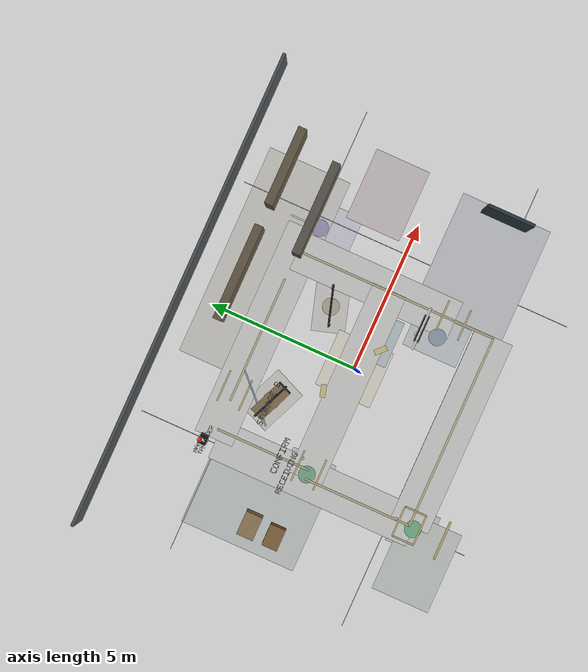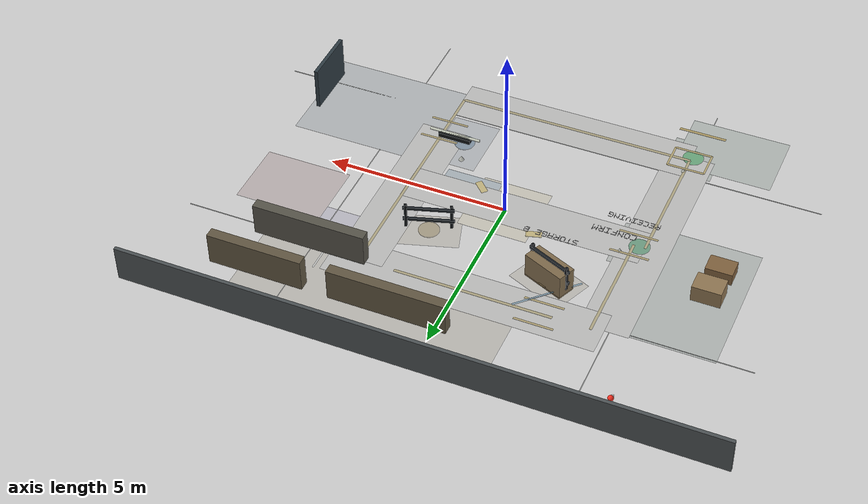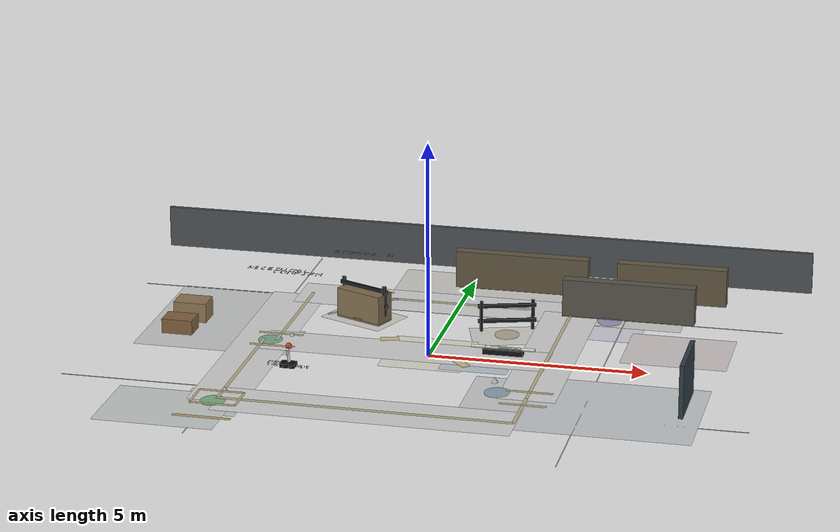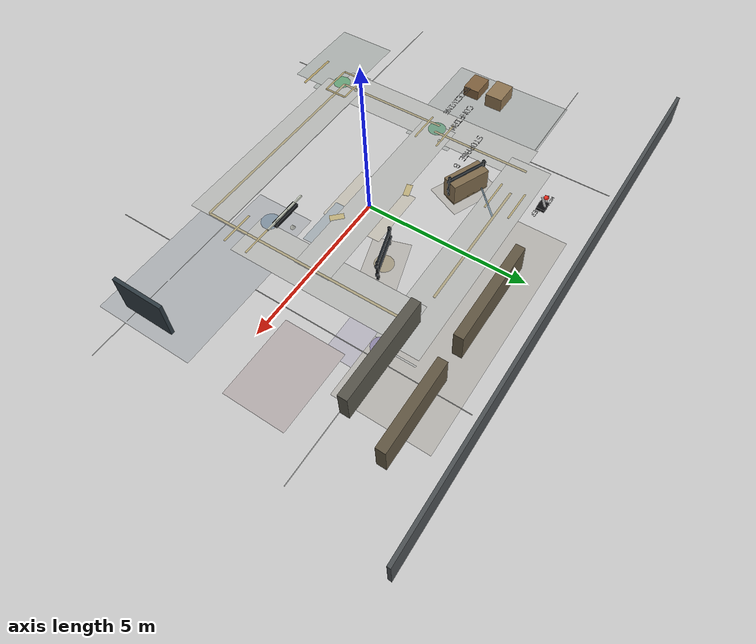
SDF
<sdf version="1.9">
 <world name="factory_patrol">
  <model name="north_wall">
   <static>true</static>
   <pose>0 6 0.5 0 0 0</pose>
   <link name="link">
    <collision name="c"><geometry><box><size>16 0.1 1</size></box></geometry></collision>
    <visual name="v">
     <geometry><box><size>16 0.1 1</size></box></geometry>
     <material><diffuse>0.30 0.32 0.33 1</diffuse></material>
    </visual>
   </link>
  </model>
  <model name="showcase_large_factory_layout">
   <static>true</static>
   <pose>0 0 0.052 0 0 0</pose>
   <link name="link">
    <visual name="receiving_area_large">
     <pose>-5.35 1.10 0 0 0 0</pose>
     <geometry><box><size>2.70 3.90 0.012</size></box></geometry>
     <material><diffuse>0.25 0.34 0.30 0.16</diffuse><ambient>0.25 0.34 0.30 0.16</ambient></material>
    </visual>
    <visual name="storage_area_large">
     <pose>1.80 3.95 0.002 0 0 0</pose>
     <geometry><box><size>7.10 2.80 0.012</size></box></geometry>
     <material><diffuse>0.45 0.40 0.30 0.15</diffuse><ambient>0.45 0.40 0.30 0.15</ambient></material>
    </visual>
    <visual name="packing_area_large">
     <pose>4.65 -2.40 0.004 0 0 0</pose>
     <geometry><box><size>3.80 3.05 0.012</size></box></geometry>
     <material><diffuse>0.27 0.33 0.39 0.16</diffuse><ambient>0.27 0.33 0.39 0.16</ambient></material>
    </visual>
    <visual name="dock_area_large">
     <pose>-4.80 -4.35 0.006 0 0 0</pose>
     <geometry><box><size>2.70 1.95 0.012</size></box></geometry>
     <material><diffuse>0.25 0.36 0.30 0.18</diffuse><ambient>0.25 0.36 0.30 0.18</ambient></material>
    </visual>
    <visual name="restricted_service_area_large">
     <pose>5.50 1.30 0.008 0 0 0</pose>
     <geometry><box><size>2.40 1.85 0.012</size></box></geometry>
     <material><diffuse>0.42 0.25 0.25 0.13</diffuse><ambient>0.42 0.25 0.25 0.13</ambient></material>
    </visual>
    <visual name="aisle_left_band">
     <pose>-3.85 -0.35 0.010 0 0 1.5708</pose>
     <geometry><box><size>6.90 1.30 0.010</size></box></geometry>
     <material><diffuse>0.50 0.51 0.48 0.13</diffuse><ambient>0.50 0.51 0.48 0.13</ambient></material>
    </visual>
    <visual name="aisle_back_band">
     <pose>-0.20 3.20 0.012 0 0 0</pose>
     <geometry><box><size>7.35 1.30 0.010</size></box></geometry>
     <material><diffuse>0.50 0.51 0.48 0.13</diffuse><ambient>0.50 0.51 0.48 0.13</ambient></material>
    </visual>
    <visual name="aisle_right_drop_band">
     <pose>2.70 0.45 0.014 0 0 1.5708</pose>
     <geometry><box><size>5.50 1.30 0.010</size></box></geometry>
     <material><diffuse>0.50 0.51 0.48 0.13</diffuse><ambient>0.50 0.51 0.48 0.13</ambient></material>
    </visual>
    <visual name="aisle_return_band">
     <pose>-0.55 -3.65 0.016 0 0 0</pose>
     <geometry><box><size>6.60 1.30 0.010</size></box></geometry>
     <material><diffuse>0.50 0.51 0.48 0.13</diffuse><ambient>0.50 0.51 0.48 0.13</ambient></material>
    </visual>
    <visual name="aisle_center_cross_band">
     <pose>-0.55 0.00 0.018 0 0 0</pose>
     <geometry><box><size>6.60 1.15 0.010</size></box></geometry>
     <material><diffuse>0.50 0.51 0.48 0.10</diffuse><ambient>0.50 0.51 0.48 0.10</ambient></material>
    </visual>
    <visual name="route_dock_to_receiving">
     <pose>-3.85 -1.82 0.026 0 0 1.5708</pose>
     <geometry><box><size>3.66 0.070 0.018</size></box></geometry>
     <material><diffuse>0.66 0.60 0.38 0.62</diffuse><emissive>0.06 0.04 0.00 1</emissive></material>
    </visual>
    <visual name="route_receiving_to_back">
     <pose>-3.55 1.60 0.028 0 0 1.5708</pose>
     <geometry><box><size>3.20 0.070 0.018</size></box></geometry>
     <material><diffuse>0.66 0.60 0.38 0.62</diffuse><emissive>0.06 0.04 0.00 1</emissive></material>
    </visual>
    <visual name="route_back_storage">
     <pose>-0.42 3.20 0.030 0 0 0</pose>
     <geometry><box><size>4.26 0.070 0.018</size></box></geometry>
     <material><diffuse>0.66 0.60 0.38 0.62</diffuse><emissive>0.06 0.04 0.00 1</emissive></material>
    </visual>
    <visual name="route_storage_to_packing">
     <pose>2.70 0.48 0.032 0 0 1.5708</pose>
     <geometry><box><size>5.44 0.070 0.018</size></box></geometry>
     <material><diffuse>0.66 0.60 0.38 0.62</diffuse><emissive>0.06 0.04 0.00 1</emissive></material>
    </visual>
    <visual name="route_packing_to_return">
     <pose>2.70 -2.95 0.034 0 0 1.5708</pose>
     <geometry><box><size>1.40 0.070 0.018</size></box></geometry>
     <material><diffuse>0.66 0.60 0.38 0.62</diffuse><emissive>0.06 0.04 0.00 1</emissive></material>
    </visual>
    <visual name="route_return_to_dock">
     <pose>-0.58 -3.65 0.036 0 0 0</pose>
     <geometry><box><size>6.55 0.070 0.018</size></box></geometry>
     <material><diffuse>0.66 0.60 0.38 0.62</diffuse><emissive>0.06 0.04 0.00 1</emissive></material>
    </visual>
    <visual name="station_frame_dock_n">
     <pose>-3.85 -3.28 0.040 0 0 0</pose>
     <geometry><box><size>1.02 0.050 0.018</size></box></geometry>
     <material><diffuse>0.73 0.65 0.40 0.76</diffuse></material>
    </visual>
    <visual name="station_frame_dock_s">
     <pose>-3.85 -4.02 0.040 0 0 0</pose>
     <geometry><box><size>1.02 0.050 0.018</size></box></geometry>
     <material><diffuse>0.73 0.65 0.40 0.76</diffuse></material>
    </visual>
    <visual name="station_frame_dock_e">
     <pose>-3.34 -3.65 0.040 0 0 1.5708</pose>
     <geometry><box><size>0.74 0.050 0.018</size></box></geometry>
     <material><diffuse>0.73 0.65 0.40 0.76</diffuse></material>
    </visual>
    <visual name="station_frame_dock_w">
     <pose>-4.36 -3.65 0.040 0 0 1.5708</pose>
     <geometry><box><size>0.74 0.050 0.018</size></box></geometry>
     <material><diffuse>0.73 0.65 0.40 0.76</diffuse></material>
    </visual>
    <visual name="station_frame_receiving_n">
     <pose>-3.55 0.38 0.040 0 0 0</pose>
     <geometry><box><size>1.05 0.050 0.018</size></box></geometry>
     <material><diffuse>0.73 0.65 0.40 0.72</diffuse></material>
    </visual>
    <visual name="station_frame_receiving_s">
     <pose>-3.55 -0.38 0.040 0 0 0</pose>
     <geometry><box><size>1.05 0.050 0.018</size></box></geometry>
     <material><diffuse>0.73 0.65 0.40 0.72</diffuse></material>
    </visual>
    <visual name="station_frame_storage_n">
     <pose>-2.20 3.58 0.040 0 0 0</pose>
     <geometry><box><size>1.05 0.050 0.018</size></box></geometry>
     <material><diffuse>0.73 0.65 0.40 0.72</diffuse></material>
    </visual>
    <visual name="station_frame_storage_s">
     <pose>-2.20 2.82 0.040 0 0 0</pose>
     <geometry><box><size>1.05 0.050 0.018</size></box></geometry>
     <material><diffuse>0.73 0.65 0.40 0.72</diffuse></material>
    </visual>
    <visual name="station_frame_packing_n">
     <pose>2.70 -1.87 0.040 0 0 0</pose>
     <geometry><box><size>1.05 0.050 0.018</size></box></geometry>
     <material><diffuse>0.73 0.65 0.40 0.72</diffuse></material>
    </visual>
    <visual name="station_frame_packing_s">
     <pose>2.70 -2.63 0.040 0 0 0</pose>
     <geometry><box><size>1.05 0.050 0.018</size></box></geometry>
     <material><diffuse>0.73 0.65 0.40 0.72</diffuse></material>
    </visual>
    <visual name="slow_zone_large_hatch_1">
     <pose>-2.45 2.20 0.048 0 0 0.7854</pose>
     <geometry><box><size>1.05 0.045 0.018</size></box></geometry>
     <material><diffuse>0.24 0.44 0.56 0.48</diffuse></material>
    </visual>
    <visual name="slow_zone_large_hatch_2">
     <pose>-2.15 2.50 0.048 0 0 0.7854</pose>
     <geometry><box><size>1.05 0.045 0.018</size></box></geometry>
     <material><diffuse>0.24 0.44 0.56 0.48</diffuse></material>
    </visual>
    <visual name="slow_zone_large_hatch_3">
     <pose>-1.85 2.80 0.048 0 0 0.7854</pose>
     <geometry><box><size>1.05 0.045 0.018</size></box></geometry>
     <material><diffuse>0.24 0.44 0.56 0.48</diffuse></material>
    </visual>
    <visual name="storage_showcase_rack_a">
     <pose>1.25 4.55 0.45 0 0 0</pose>
     <geometry><box><size>3.20 0.28 0.90</size></box></geometry>
     <material><diffuse>0.38 0.34 0.26 1</diffuse></material>
    </visual>
    <visual name="storage_showcase_rack_b">
     <pose>4.85 4.55 0.45 0 0 0</pose>
     <geometry><box><size>2.60 0.28 0.90</size></box></geometry>
     <material><diffuse>0.38 0.34 0.26 1</diffuse></material>
    </visual>
    <visual name="storage_showcase_rack_c">
     <pose>4.05 3.15 0.45 0 0 0</pose>
     <geometry><box><size>3.10 0.28 0.90</size></box></geometry>
     <material><diffuse>0.34 0.33 0.29 1</diffuse></material>
    </visual>
    <visual name="receiving_inbound_buffer_1">
     <pose>-5.90 0.15 0.18 0 0 0</pose>
     <geometry><box><size>0.72 0.52 0.34</size></box></geometry>
     <material><diffuse>0.50 0.38 0.24 1</diffuse></material>
    </visual>
    <visual name="receiving_inbound_buffer_2">
     <pose>-5.85 1.00 0.24 0 0 0</pose>
     <geometry><box><size>0.78 0.56 0.46</size></box></geometry>
     <material><diffuse>0.56 0.46 0.32 1</diffuse></material>
    </visual>
    <visual name="packing_showcase_toolwall">
     <pose>6.20 -2.38 0.85 0 0 0</pose>
     <geometry><box><size>0.10 1.55 1.20</size></box></geometry>
     <material><diffuse>0.18 0.23 0.26 1</diffuse></material>
    </visual>
    <visual name="dock_approach_stop_bar">
     <pose>-3.85 -4.80 0.052 0 0 0</pose>
     <geometry><box><size>1.30 0.070 0.018</size></box></geometry>
     <material><diffuse>0.72 0.62 0.34 0.78</diffuse></material>
    </visual>
   </link>
  </model>
  <model name="storage_rack_2">
   <static>true</static>
   <pose>-2 2 0.35 0 0 -0.4</pose>
   <link name="link">
    <collision name="c"><geometry><box><size>1.2 0.5 0.7</size></box></geometry></collision>
    <visual name="v">
     <geometry><box><size>1.2 0.5 0.7</size></box></geometry>
     <material><diffuse>0.50 0.42 0.30 1</diffuse></material>
    </visual>
   </link>
  </model>
  <model name="showcase_rack_and_workcell_detail">
   <static>true</static>
   <link name="link">
    <visual name="rack_a_top_beam">
     <pose>1.50 1.50 0.78 0 0 0.30</pose>
     <geometry><box><size>1.34 0.06 0.08</size></box></geometry>
     <material><diffuse>0.10 0.12 0.14 1</diffuse></material>
    </visual>
    <visual name="rack_a_bottom_beam">
     <pose>1.50 1.50 0.42 0 0 0.30</pose>
     <geometry><box><size>1.34 0.06 0.08</size></box></geometry>
     <material><diffuse>0.10 0.12 0.14 1</diffuse></material>
    </visual>
    <visual name="rack_a_post_1">
     <pose>0.94 1.31 0.55 0 0 0.30</pose>
     <geometry><box><size>0.07 0.07 0.72</size></box></geometry>
     <material><diffuse>0.08 0.09 0.10 1</diffuse></material>
    </visual>
    <visual name="rack_a_post_2">
     <pose>2.06 1.69 0.55 0 0 0.30</pose>
     <geometry><box><size>0.07 0.07 0.72</size></box></geometry>
     <material><diffuse>0.08 0.09 0.10 1</diffuse></material>
    </visual>
    <visual name="rack_b_top_beam">
     <pose>-2.00 2.00 0.78 0 0 -0.40</pose>
     <geometry><box><size>1.34 0.06 0.08</size></box></geometry>
     <material><diffuse>0.10 0.12 0.14 1</diffuse></material>
    </visual>
    <visual name="rack_b_bottom_beam">
     <pose>-2.00 2.00 0.42 0 0 -0.40</pose>
     <geometry><box><size>1.34 0.06 0.08</size></box></geometry>
     <material><diffuse>0.10 0.12 0.14 1</diffuse></material>
    </visual>
    <visual name="rack_b_post_1">
     <pose>-2.54 2.24 0.55 0 0 -0.40</pose>
     <geometry><box><size>0.07 0.07 0.72</size></box></geometry>
     <material><diffuse>0.08 0.09 0.10 1</diffuse></material>
    </visual>
    <visual name="rack_b_post_2">
     <pose>-1.46 1.76 0.55 0 0 -0.40</pose>
     <geometry><box><size>0.07 0.07 0.72</size></box></geometry>
     <material><diffuse>0.08 0.09 0.10 1</diffuse></material>
    </visual>
    <visual name="packing_conveyor">
     <pose>2.00 -1.36 0.78 0 0 0</pose>
     <geometry><box><size>0.90 0.16 0.12</size></box></geometry>
     <material><diffuse>0.07 0.08 0.09 1</diffuse></material>
    </visual>
    <visual name="packing_roller_1">
     <pose>1.70 -1.36 0.87 0 1.5708 0</pose>
     <geometry><cylinder><radius>0.035</radius><length>0.82</length></cylinder></geometry>
     <material><diffuse>0.80 0.82 0.76 1</diffuse></material>
    </visual>
    <visual name="packing_roller_2">
     <pose>2.00 -1.36 0.87 0 1.5708 0</pose>
     <geometry><cylinder><radius>0.035</radius><length>0.82</length></cylinder></geometry>
     <material><diffuse>0.80 0.82 0.76 1</diffuse></material>
    </visual>
    <visual name="packing_roller_3">
     <pose>2.30 -1.36 0.87 0 1.5708 0</pose>
     <geometry><cylinder><radius>0.035</radius><length>0.82</length></cylinder></geometry>
     <material><diffuse>0.80 0.82 0.76 1</diffuse></material>
    </visual>
   </link>
  </model>
  <model name="showcase_zone_floor">
   <static>true</static>
   <pose>0 0 0.035 0 0 0</pose>
   <link name="link">
    <visual name="receiving_zone">
     <pose>-3.70 0.00 0 0 0 0</pose>
     <geometry><box><size>1.25 1.50 0.012</size></box></geometry>
     <material><diffuse>0.28 0.36 0.32 0.20</diffuse><ambient>0.28 0.36 0.32 0.20</ambient></material>
    </visual>
    <visual name="storage_a_zone">
     <pose>1.50 1.50 0 0 0 0.30</pose>
     <geometry><box><size>1.65 1.10 0.012</size></box></geometry>
     <material><diffuse>0.48 0.43 0.32 0.20</diffuse><ambient>0.48 0.43 0.32 0.20</ambient></material>
    </visual>
    <visual name="storage_b_zone">
     <pose>-2.00 2.00 0 0 0 -0.40</pose>
     <geometry><box><size>1.65 1.15 0.012</size></box></geometry>
     <material><diffuse>0.48 0.43 0.32 0.20</diffuse><ambient>0.48 0.43 0.32 0.20</ambient></material>
    </visual>
    <visual name="packing_zone">
     <pose>2.00 -2.00 0 0 0 0</pose>
     <geometry><box><size>1.30 1.85 0.012</size></box></geometry>
     <material><diffuse>0.30 0.36 0.42 0.20</diffuse><ambient>0.30 0.36 0.42 0.20</ambient></material>
    </visual>
    <visual name="dock_zone">
     <pose>-3.90 -3.80 0 0 0 0</pose>
     <geometry><box><size>1.35 1.35 0.012</size></box></geometry>
     <material><diffuse>0.28 0.38 0.32 0.22</diffuse><ambient>0.28 0.38 0.32 0.22</ambient></material>
    </visual>
    <visual name="elevator_zone">
     <pose>3.65 2.85 0 0 0 0</pose>
     <geometry><box><size>1.70 2.30 0.012</size></box></geometry>
     <material><diffuse>0.46 0.42 0.62 0.15</diffuse><ambient>0.46 0.42 0.62 0.15</ambient></material>
    </visual>
    <visual name="traffic_control_zone">
     <pose>0.00 0.00 0.006 0 0 0</pose>
     <geometry><box><size>1.90 1.90 0.012</size></box></geometry>
     <material><diffuse>0.72 0.64 0.40 0.14</diffuse><ambient>0.72 0.64 0.40 0.14</ambient></material>
    </visual>
    <visual name="slow_zone_overlay">
     <pose>1.20 -0.25 0.012 0 0 0</pose>
     <geometry><box><size>1.55 1.25 0.012</size></box></geometry>
     <material><diffuse>0.22 0.38 0.48 0.24</diffuse><ambient>0.22 0.38 0.48 0.24</ambient></material>
    </visual>
   </link>
  </model>
  <model name="showcase_floor_finish">
   <static>true</static>
   <pose>0 0 0.057 0 0 0</pose>
   <link name="link">
    <visual name="floor_joint_x_neg">
     <pose>-4.00 0 0 0 0 0</pose>
     <geometry><box><size>0.018 11.30 0.010</size></box></geometry>
     <material><diffuse>0.28 0.29 0.28 0.42</diffuse><ambient>0.28 0.29 0.28 0.42</ambient></material>
    </visual>
    <visual name="floor_joint_x_pos">
     <pose>4.00 0 0 0 0 0</pose>
     <geometry><box><size>0.018 11.30 0.010</size></box></geometry>
     <material><diffuse>0.28 0.29 0.28 0.42</diffuse><ambient>0.28 0.29 0.28 0.42</ambient></material>
    </visual>
    <visual name="floor_joint_y_neg">
     <pose>0 -3.00 0 0 0 0</pose>
     <geometry><box><size>15.30 0.018 0.010</size></box></geometry>
     <material><diffuse>0.28 0.29 0.28 0.42</diffuse><ambient>0.28 0.29 0.28 0.42</ambient></material>
    </visual>
    <visual name="floor_joint_y_pos">
     <pose>0 3.00 0 0 0 0</pose>
     <geometry><box><size>15.30 0.018 0.010</size></box></geometry>
     <material><diffuse>0.28 0.29 0.28 0.42</diffuse><ambient>0.28 0.29 0.28 0.42</ambient></material>
    </visual>
    <visual name="floor_tire_scuff_main_1">
     <pose>-0.55 -0.18 0.004 0 0 -0.01</pose>
     <geometry><box><size>6.80 0.035 0.010</size></box></geometry>
     <material><diffuse>0.22 0.23 0.22 0.26</diffuse><ambient>0.22 0.23 0.22 0.26</ambient></material>
    </visual>
    <visual name="floor_tire_scuff_main_2">
     <pose>-0.42 0.20 0.004 0 0 -0.01</pose>
     <geometry><box><size>6.40 0.028 0.010</size></box></geometry>
     <material><diffuse>0.22 0.23 0.22 0.22</diffuse><ambient>0.22 0.23 0.22 0.22</ambient></material>
    </visual>
    <visual name="floor_tire_scuff_dock_1">
     <pose>-3.88 -2.10 0.004 0 0 1.5708</pose>
     <geometry><box><size>3.20 0.030 0.010</size></box></geometry>
     <material><diffuse>0.22 0.23 0.22 0.24</diffuse><ambient>0.22 0.23 0.22 0.24</ambient></material>
    </visual>
    <visual name="floor_tire_scuff_packing_1">
     <pose>2.70 -1.60 0.004 0 0 -1.5708</pose>
     <geometry><box><size>3.20 0.025 0.010</size></box></geometry>
     <material><diffuse>0.22 0.23 0.22 0.22</diffuse><ambient>0.22 0.23 0.22 0.22</ambient></material>
    </visual>
   </link>
  </model>
  <model name="showcase_lane_markers">
   <static>true</static>
   <pose>0 0 0.055 0 0 0</pose>
   <link name="link">
    <visual name="lane_dock_receiving">
     <pose>-3.90 -1.84 0 0 0 1.5708</pose>
     <geometry><box><size>3.62 0.045 0.018</size></box></geometry>
     <material><diffuse>0.60 0.62 0.58 0.20</diffuse><emissive>0.03 0.03 0.03 1</emissive></material>
    </visual>
    <visual name="lane_receiving_storage_a">
     <pose>-3.55 1.60 0 0 0 1.5708</pose>
     <geometry><box><size>3.20 0.045 0.018</size></box></geometry>
     <material><diffuse>0.60 0.62 0.58 0.18</diffuse><emissive>0.03 0.03 0.03 1</emissive></material>
    </visual>
    <visual name="lane_receiving_storage_b">
     <pose>-2.85 3.20 0 0 0 0</pose>
     <geometry><box><size>1.40 0.045 0.018</size></box></geometry>
     <material><diffuse>0.60 0.62 0.58 0.18</diffuse><emissive>0.03 0.03 0.03 1</emissive></material>
    </visual>
    <visual name="lane_storage_a_packing">
     <pose>0.25 3.20 0 0 0 0</pose>
     <geometry><box><size>4.90 0.045 0.018</size></box></geometry>
     <material><diffuse>0.60 0.62 0.58 0.18</diffuse><emissive>0.03 0.03 0.03 1</emissive></material>
    </visual>
    <visual name="lane_storage_b_packing">
     <pose>2.70 0.48 0.004 0 0 1.5708</pose>
     <geometry><box><size>5.44 0.045 0.018</size></box></geometry>
     <material><diffuse>0.60 0.62 0.58 0.18</diffuse><emissive>0.03 0.03 0.03 1</emissive></material>
    </visual>
    <visual name="lane_packing_dock">
     <pose>-0.58 -3.65 0 0 0 0</pose>
     <geometry><box><size>6.55 0.045 0.018</size></box></geometry>
     <material><diffuse>0.60 0.62 0.58 0.18</diffuse><emissive>0.03 0.03 0.03 1</emissive></material>
    </visual>
    <visual name="lane_packing_lift">
     <pose>2.70 -2.95 0 0 0 1.5708</pose>
     <geometry><box><size>1.40 0.045 0.018</size></box></geometry>
     <material><diffuse>0.60 0.62 0.58 0.18</diffuse><emissive>0.03 0.03 0.03 1</emissive></material>
    </visual>
    <visual name="lane_lift_floor2">
     <pose>3.65 3.35 0 0 0 1.5708</pose>
     <geometry><box><size>1.05 0.045 0.018</size></box></geometry>
     <material><diffuse>0.60 0.62 0.58 0.16</diffuse><emissive>0.02 0.02 0.02 1</emissive></material>
    </visual>
    <visual name="arrow_receiving">
     <pose>-3.28 0.34 0.020 0 0 0.78</pose>
     <geometry><cone><radius>0.11</radius><length>0.18</length></cone></geometry>
     <material><diffuse>0.64 0.66 0.60 0.55</diffuse><emissive>0.08 0.08 0.06 1</emissive></material>
    </visual>
    <visual name="arrow_packing">
     <pose>1.82 -1.36 0.020 0 0 -1.2</pose>
     <geometry><cone><radius>0.11</radius><length>0.18</length></cone></geometry>
     <material><diffuse>0.64 0.66 0.60 0.55</diffuse><emissive>0.08 0.08 0.06 1</emissive></material>
    </visual>
    <visual name="arrow_dock">
     <pose>-3.82 -3.18 0.020 0 0 -1.57</pose>
     <geometry><cone><radius>0.11</radius><length>0.18</length></cone></geometry>
     <material><diffuse>0.64 0.66 0.60 0.55</diffuse><emissive>0.08 0.08 0.06 1</emissive></material>
    </visual>
   </link>
  </model>
  <model name="showcase_station_pads">
   <static>true</static>
   <pose>0 0 0.070 0 0 0</pose>
   <link name="link">
    <visual name="pad_receiving">
     <pose>-3.70 0.00 0 0 0 0</pose>
     <geometry><cylinder><radius>0.28</radius><length>0.026</length></cylinder></geometry>
     <material><diffuse>0.20 0.52 0.34 0.58</diffuse><emissive>0.00 0.07 0.03 1</emissive></material>
    </visual>
    <visual name="pad_storage_a">
     <pose>1.50 1.50 0 0 0 0</pose>
     <geometry><cylinder><radius>0.28</radius><length>0.026</length></cylinder></geometry>
     <material><diffuse>0.54 0.46 0.28 0.50</diffuse><emissive>0.06 0.03 0.00 1</emissive></material>
    </visual>
    <visual name="pad_storage_b">
     <pose>-2.00 2.00 0 0 0 0</pose>
     <geometry><cylinder><radius>0.28</radius><length>0.026</length></cylinder></geometry>
     <material><diffuse>0.54 0.46 0.28 0.50</diffuse><emissive>0.06 0.03 0.00 1</emissive></material>
    </visual>
    <visual name="pad_packing">
     <pose>2.00 -2.00 0 0 0 0</pose>
     <geometry><cylinder><radius>0.28</radius><length>0.026</length></cylinder></geometry>
     <material><diffuse>0.26 0.40 0.52 0.50</diffuse><emissive>0.00 0.04 0.08 1</emissive></material>
    </visual>
    <visual name="pad_dock">
     <pose>-3.90 -3.80 0 0 0 0</pose>
     <geometry><cylinder><radius>0.28</radius><length>0.026</length></cylinder></geometry>
     <material><diffuse>0.18 0.58 0.30 0.58</diffuse><emissive>0.00 0.08 0.02 1</emissive></material>
    </visual>
    <visual name="pad_lift">
     <pose>3.65 2.85 0 0 0 0</pose>
     <geometry><cylinder><radius>0.28</radius><length>0.026</length></cylinder></geometry>
     <material><diffuse>0.42 0.36 0.60 0.55</diffuse><emissive>0.03 0.02 0.08 1</emissive></material>
    </visual>
    <visual name="wait_point_1">
     <pose>-1.05 0.62 0.012 0 0 0.28</pose>
     <geometry><box><size>0.42 0.18 0.026</size></box></geometry>
     <material><diffuse>0.78 0.68 0.34 0.60</diffuse><emissive>0.28 0.20 0.00 1</emissive></material>
    </visual>
    <visual name="wait_point_2">
     <pose>0.88 -0.52 0.012 0 0 -0.78</pose>
     <geometry><box><size>0.42 0.18 0.026</size></box></geometry>
     <material><diffuse>0.78 0.68 0.34 0.60</diffuse><emissive>0.28 0.20 0.00 1</emissive></material>
    </visual>
   </link>
  </model>
  <model name="manual_takeover_indicator">
   <static>false</static>
   <pose>-4.35 3.65 -2 0 0 0</pose>
   <link name="link">
    <gravity>false</gravity>
    <visual name="joystick_base_visual">
     <geometry><box><size>0.38 0.28 0.10</size></box></geometry>
     <material><diffuse>0.05 0.05 0.06 1</diffuse></material>
    </visual>
    <visual name="joystick_stick_visual">
     <pose>0 0 0.22 0.38 0 0</pose>
     <geometry><cylinder><radius>0.035</radius><length>0.42</length></cylinder></geometry>
     <material><diffuse>0.95 0.95 0.95 1</diffuse></material>
    </visual>
    <visual name="joystick_top_visual">
     <pose>0 0.07 0.45 0 0 0</pose>
     <geometry><sphere><radius>0.08</radius></sphere></geometry>
     <material><diffuse>0.95 0.18 0.12 1</diffuse><emissive>0.35 0.02 0.01 1</emissive></material>
    </visual>
   </link>
  </model>
  <model name="label_receiving">
   <static>false</static>
   <pose>-3.70 0.65 1.55 0 0 0.00</pose>
   <link name="link">
    <gravity>false</gravity>
    <visual name="text_mesh_visual">
     <cast_shadows>false</cast_shadows>
     <geometry><mesh><uri>../media/text_meshes/label_receiving.obj</uri></mesh></geometry>
     <material>
      <ambient>0.000 0.000 0.000 1</ambient>
      <diffuse>0.000 0.000 0.000 1</diffuse>
      <emissive>0 0 0 1</emissive>
      <double_sided>true</double_sided>
     </material>
    </visual>
   </link>
  </model>
  <model name="label_storage_b">
   <static>false</static>
   <pose>-2.00 2.00 1.60 0 0 0.00</pose>
   <link name="link">
    <gravity>false</gravity>
    <visual name="text_mesh_visual">
     <cast_shadows>false</cast_shadows>
     <geometry><mesh><uri>../media/text_meshes/label_storage_b.obj</uri></mesh></geometry>
     <material>
      <ambient>0.000 0.000 0.000 1</ambient>
      <diffuse>0.000 0.000 0.000 1</diffuse>
      <emissive>0 0 0 1</emissive>
      <double_sided>true</double_sided>
     </material>
    </visual>
   </link>
  </model>
  <model name="label_confirm">
   <static>false</static>
   <pose>-3.32 1.03 1.35 0 0 0.00</pose>
   <link name="link">
    <gravity>false</gravity>
    <visual name="text_mesh_visual">
     <cast_shadows>false</cast_shadows>
     <geometry><mesh><uri>../media/text_meshes/label_confirm.obj</uri></mesh></geometry>
     <material>
      <ambient>0.000 0.000 0.000 1</ambient>
      <diffuse>0.000 0.000 0.000 1</diffuse>
      <emissive>0 0 0 1</emissive>
      <double_sided>true</double_sided>
     </material>
    </visual>
   </link>
  </model>
  <model name="label_manual_takeover_status">
   <static>false</static>
   <pose>-4.35 3.65 -2 0 0 0.00</pose>
   <link name="link">
    <gravity>false</gravity>
    <visual name="text_mesh_visual">
     <cast_shadows>false</cast_shadows>
     <geometry><mesh><uri>../media/text_meshes/label_manual_takeover_status.obj</uri></mesh></geometry>
     <material>
      <ambient>0.000 0.000 0.000 1</ambient>
      <diffuse>0.000 0.000 0.000 1</diffuse>
      <emissive>0 0 0 1</emissive>
      <double_sided>true</double_sided>
     </material>
    </visual>
   </link>
  </model>
 </world>
</sdf>
